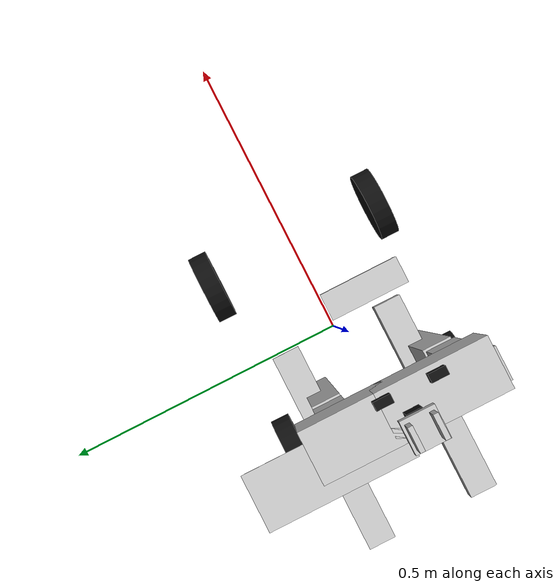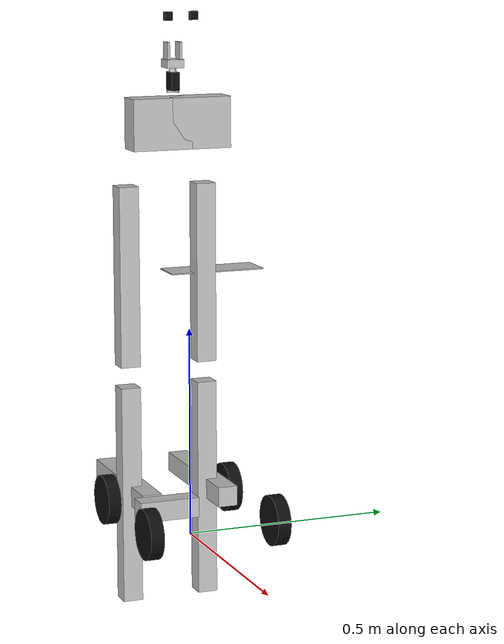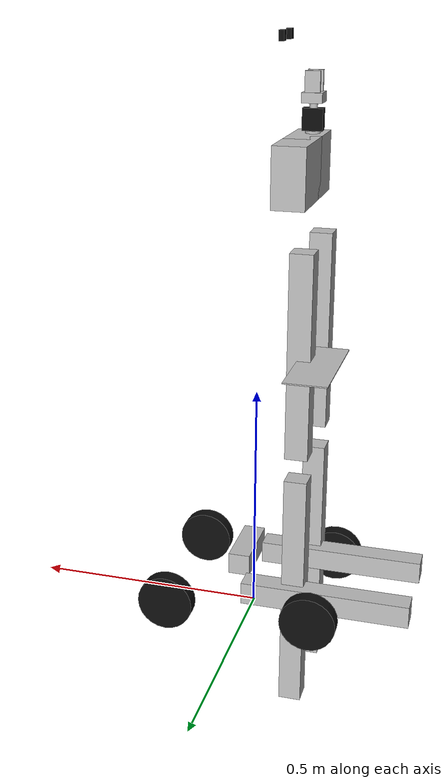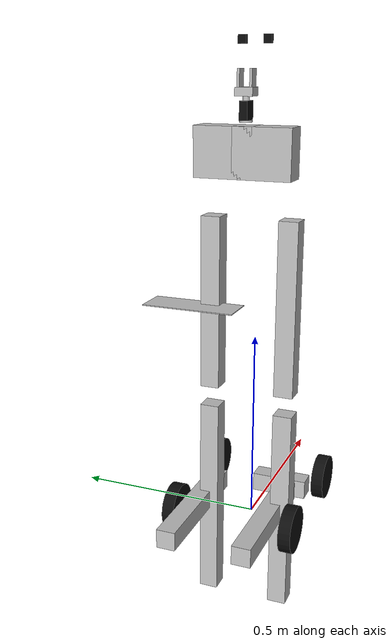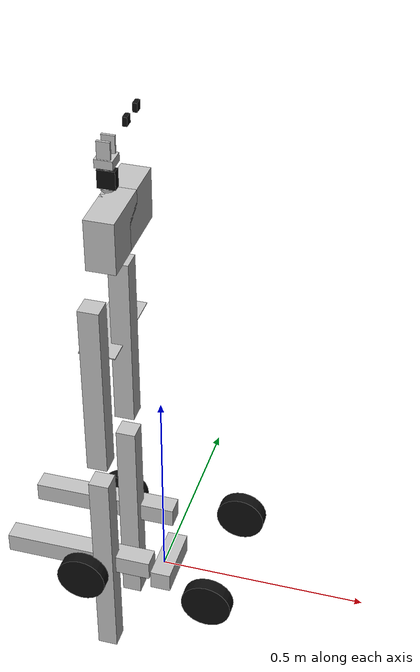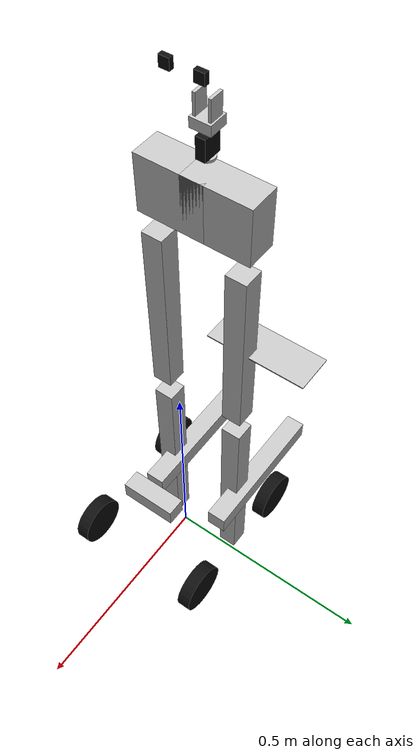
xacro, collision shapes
<?xml version="1.0"?>
<robot xmlns:xacro="http://www.ros.org/wiki/xacro" name="jessica">

  <xacro:arg name="use_ros2_control" default="true"/>
  <xacro:arg name="sim_mode"          default="false"/>

  <xacro:include filename="dimensions.xacro"/>
  <xacro:include filename="materials.xacro"/>
  <xacro:include filename="inertial_macros.xacro"/>

  <xacro:include filename="frame.xacro"/>
  <xacro:include filename="wheels.xacro"/>
  <xacro:include filename="pan_tilt.xacro"/>
  <xacro:include filename="stereo_camera.xacro"/>

  <xacro:if value="$(arg use_ros2_control)">
    <xacro:include filename="ros2_control.xacro"/>
  </xacro:if>

</robot>

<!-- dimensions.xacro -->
<robot xmlns:xacro="http://www.ros.org/wiki/xacro">

  <!-- ============ Real hardware dimensions (gobilda parts) ============ -->
  <!-- gobilda 3601-0014-0120 wheel -->
  <xacro:property name="wheel_radius" value="0.060"/>
  <xacro:property name="wheel_width"  value="0.032"/>

  <!-- gobilda 1120-series U-channel: every frame part below shares this
       48x48mm cross-section, only the length differs. -->
  <xacro:property name="channel_cross"    value="0.048"/>
  <xacro:property name="foot_length"      value="0.360"/>
  <xacro:property name="cross_bar_length" value="0.144"/>
  <xacro:property name="leg_length"       value="0.528"/>
  <xacro:property name="body_length"      value="0.432"/>

  <!-- gobilda 1116-0088-0232 flat grid plate -->
  <xacro:property name="grid_x"         value="0.088"/>   <!-- front-back depth -->
  <xacro:property name="grid_y"         value="0.232"/>   <!-- spans between the legs -->
  <xacro:property name="grid_thickness" value="0.0025"/>

  <xacro:property name="wheel_end_inset" value="0.024"/>  <!-- wheel axle inset from each end of a foot -->
  <xacro:property name="wheel_side_gap"  value="0.020"/>  <!-- gap from the foot's outer face to the wheel's near edge -->
  <xacro:property name="leg_from_back"   value="0.072"/>  <!-- leg centerline, measured from the back of the foot -->
  <xacro:property name="cross_bar_from_front" value="0.144"/>  <!-- cross-bar centerline, measured from the front of the feet -->

  <!-- Foot centerline (Y): assumes cross_bar_length is the clear span between
       the two feet's facing inner surfaces. -->
  <xacro:property name="foot_track_y" value="${cross_bar_length/2 + channel_cross/2}"/>

  <xacro:property name="wheel_sep_x" value="${foot_length/2 - wheel_end_inset}"/>
  <xacro:property name="wheel_sep_y" value="${foot_track_y + channel_cross/2 + wheel_side_gap + wheel_width/2}"/>

  <xacro:property name="foot_z"     value="${wheel_radius}"/>            <!-- foot cross-section is vertically centred on the axle -->
  <xacro:property name="foot_top_z" value="${foot_z + channel_cross/2}"/>

  <xacro:property name="leg_x"     value="${-(foot_length/2) + leg_from_back}"/>
  <xacro:property name="leg_top_z" value="${foot_top_z + leg_length}"/>

  <xacro:property name="cross_bar_x" value="${foot_length/2 - cross_bar_from_front}"/>

  <xacro:property name="grid_top_z" value="${leg_top_z + grid_thickness}"/>

  <xacro:property name="body_x"     value="${leg_x}"/>
  <xacro:property name="body_top_z" value="${grid_top_z + body_length}"/>

  <!-- Short riser between the frame's body_top and the pan servo. -->
  <xacro:property name="neck_height" value="0.005"/>

  <xacro:property name="servo_length" value="0.0407"/>
  <xacro:property name="servo_width"  value="0.0197"/>
  <xacro:property name="servo_height" value="0.0429"/>

  <!-- Coupler between the pan servo's output and the tilt servo. -->
  <xacro:property name="pan_tilt_spacer_height" value="0.01"/>

  <!-- U-bracket the head sits on, straddling the tilt servo's rotation axis. -->
  <xacro:property name="head_bracket_height"       value="0.05"/>
  <xacro:property name="head_bracket_arm_spacing"   value="0.03"/>
  <xacro:property name="head_bracket_arm_thickness" value="0.006"/>

  <xacro:property name="camera_baseline" value="0.062"/>
  <xacro:property name="camera_face_x"   value="0.051776"/>
  <xacro:property name="camera_face_z"   value="0.113845"/>

</robot>

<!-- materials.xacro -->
<robot xmlns:xacro="http://www.ros.org/wiki/xacro">

  <material name="gray">  <color rgba="0.75 0.75 0.75 1"/></material>
  <material name="blue">  <color rgba="0.2 0.2 1 1"/></material>
  <material name="black"> <color rgba="0.05 0.05 0.05 1"/></material>
  <material name="pink">  <color rgba="1.0 0.4 0.7 1"/></material>
  <material name="white"> <color rgba="0.95 0.95 0.95 1"/></material>

</robot>

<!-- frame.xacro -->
<robot xmlns:xacro="http://www.ros.org/wiki/xacro">

  <xacro:macro name="frame_mesh_part" params="mesh_name xyz rpy box_size material:=gray">
    <visual>
      <origin xyz="${xyz}" rpy="${rpy}"/>
      <geometry>
        <mesh filename="package://jessica_description/description/meshes/visual/${mesh_name}.stl" scale="0.001 0.001 0.001"/>
      </geometry>
      <material name="${material}"/>
    </visual>
    <collision>
      <origin xyz="${xyz}" rpy="${rpy}"/>
      <geometry>
        <box size="${box_size}"/>
      </geometry>
    </collision>
  </xacro:macro>

  <link name="base_link"/>

  <joint name="base_footprint_joint" type="fixed">
    <parent link="base_link"/>
    <child  link="base_footprint"/>
    <origin xyz="0 0 0" rpy="0 0 0"/>
  </joint>
  <link name="base_footprint"/>

  <joint name="chassis_joint" type="fixed">
    <parent link="base_link"/>
    <child  link="chassis"/>
    <origin xyz="0 0 0" rpy="0 0 0"/>
  </joint>
  <link name="chassis">

    <!-- Feet: native Z-axis maps straight onto global Z under this rotation,
         so it needs the +0.0215 correction (native centroid was off-centre
         in that axis by 21.5mm). -->
    <xacro:frame_mesh_part mesh_name="foot_360" box_size="${channel_cross} ${foot_length} ${channel_cross}"
      xyz="${-foot_length/2} ${foot_track_y}  ${foot_z + 0.0215}" rpy="0 0 ${-pi/2}"/>
    <xacro:frame_mesh_part mesh_name="foot_360" box_size="${channel_cross} ${foot_length} ${channel_cross}"
      xyz="${-foot_length/2} ${-foot_track_y} ${foot_z + 0.0215}" rpy="0 0 ${-pi/2}"/>

    <!-- Cross-bar: unrotated, same Z correction as the feet. -->
    <xacro:frame_mesh_part mesh_name="cross_bar_144" box_size="${channel_cross} ${cross_bar_length} ${channel_cross}"
      xyz="${cross_bar_x} ${-cross_bar_length/2} ${foot_z + 0.0215}" rpy="0 0 0"/>

    <!-- Legs: standing rotation moves the native Z-axis correction onto Y
         instead (-0.0215); the Z correction cancels out exactly. -->
    <xacro:frame_mesh_part mesh_name="leg_528" box_size="${channel_cross} ${leg_length} ${channel_cross}"
      xyz="${leg_x}  ${foot_track_y - 0.0215} ${foot_top_z}" rpy="${pi/2} 0 0"/>
    <xacro:frame_mesh_part mesh_name="leg_528" box_size="${channel_cross} ${leg_length} ${channel_cross}"
      xyz="${leg_x} ${-foot_track_y - 0.0215} ${foot_top_z}" rpy="${pi/2} 0 0"/>

    <!-- Grid, lying flat across the leg tops: fixed 40mm/112mm/1.25mm native
         offsets (see convert_meshes.py output), Z correction cancels out. -->
    <xacro:frame_mesh_part mesh_name="grid_88_232" box_size="${grid_x} ${grid_thickness} ${grid_y}"
      xyz="${body_x - 0.040} 0.112 ${leg_top_z}" rpy="${pi/2} 0 0"/>

    <!-- Body channels: same rotation/correction pattern as the legs, Z correction cancels out. -->
    <xacro:frame_mesh_part mesh_name="body_432" box_size="${channel_cross} ${body_length} ${channel_cross}"
      xyz="${body_x}  ${foot_track_y - 0.0215} ${grid_top_z}" rpy="${pi/2} 0 0"/>
    <xacro:frame_mesh_part mesh_name="body_432" box_size="${channel_cross} ${body_length} ${channel_cross}"
      xyz="${body_x} ${-foot_track_y - 0.0215} ${grid_top_z}" rpy="${pi/2} 0 0"/>

    <xacro:frame_mesh_part mesh_name="robot_front" material="white" box_size="0.121 0.144 0.067"
      xyz="${body_x + channel_cross/2} ${-(foot_track_y + channel_cross/2) + 0.077000} ${body_top_z - 0.068951}" rpy="${pi/2} ${pi/2} ${-pi/2}"/>

    <xacro:frame_mesh_part mesh_name="robot_front" material="white" box_size="0.121 0.144 0.067"
      xyz="${body_x + channel_cross/2} ${foot_track_y + channel_cross/2 - 0.067000} ${body_top_z - 0.068951}" rpy="${pi/2} ${pi/2} ${-pi/2}"/>

  </link>

  <joint name="body_top_joint" type="fixed">
    <parent link="chassis"/>
    <child  link="body_top"/>
    <origin xyz="${body_x} 0 ${body_top_z}" rpy="0 0 0"/>
  </joint>
  <link name="body_top"/>

</robot>

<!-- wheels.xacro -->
<robot xmlns:xacro="http://www.ros.org/wiki/xacro">

  <xacro:macro name="wheel" params="name x y reflect">
    <link name="${name}">
      <visual>
        <origin xyz="0 0.016 0" rpy="${-pi/2} 0 0"/>
        <geometry><mesh filename="package://jessica_description/description/meshes/visual/wheel_120.stl" scale="0.001 0.001 0.001"/></geometry>
        <material name="black"/>
      </visual>
      <collision>
        <origin xyz="0 0 0" rpy="${pi/2} 0 0"/>
        <geometry><cylinder length="${wheel_width}" radius="${wheel_radius}"/></geometry>
      </collision>
    </link>
    <joint name="${name}_joint" type="continuous">
      <parent link="base_link"/>
      <child  link="${name}"/>
      <origin xyz="${x} ${y} ${wheel_radius}" rpy="0 0 0"/>
      <axis xyz="0 1 0"/>
    </joint>
  </xacro:macro>

  <xacro:wheel name="left_front_wheel"  x="${ wheel_sep_x}" y="${ wheel_sep_y}" reflect="1"/>
  <xacro:wheel name="left_rear_wheel"   x="${-wheel_sep_x}" y="${ wheel_sep_y}" reflect="1"/>
  <xacro:wheel name="right_front_wheel" x="${ wheel_sep_x}" y="${-wheel_sep_y}" reflect="-1"/>
  <xacro:wheel name="right_rear_wheel"  x="${-wheel_sep_x}" y="${-wheel_sep_y}" reflect="-1"/>

</robot>

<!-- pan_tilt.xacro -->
<robot xmlns:xacro="http://www.ros.org/wiki/xacro">

  <xacro:macro name="mg996_servo" params="xyz rpy">
    <visual>
      <origin xyz="${xyz}" rpy="${rpy}"/>
      <geometry><box size="${servo_length} ${servo_width} ${servo_height}"/></geometry>
      <material name="black"/>
    </visual>
    <collision>
      <origin xyz="${xyz}" rpy="${rpy}"/>
      <geometry><box size="${servo_length} ${servo_width} ${servo_height}"/></geometry>
    </collision>
  </xacro:macro>

  <joint name="neck_joint" type="fixed">
    <parent link="body_top"/>
    <child  link="neck"/>
    <origin xyz="0.005 0 0" rpy="0 0 0"/>
  </joint>
  <link name="neck">
    <visual>
      <origin xyz="0 0 ${neck_height/2}" rpy="0 0 0"/>
      <geometry><cylinder radius="0.015" length="${neck_height}"/></geometry>
      <material name="gray"/>
    </visual>
    <collision>
      <origin xyz="0 0 ${neck_height/2}" rpy="0 0 0"/>
      <geometry><cylinder radius="0.015" length="${neck_height}"/></geometry>
    </collision>
  </link>

  <joint name="pan_servo_joint" type="fixed">
    <parent link="neck"/>
    <child  link="pan_servo"/>
    <origin xyz="0 0 ${neck_height}" rpy="0 0 0"/>
  </joint>
  <link name="pan_servo">
    <!-- shaft (servo_height axis) points straight up -->
    <xacro:mg996_servo xyz="0 0 ${servo_height/2}" rpy="0 0 0"/>
  </link>

  <!-- pan: yaw about Z -->
  <joint name="pan_joint" type="revolute">
    <parent link="pan_servo"/>
    <child  link="tilt_mount"/>
    <origin xyz="0 0 ${servo_height}" rpy="0 0 0"/>
    <axis xyz="0 0 1"/>
    <limit lower="-1.57" upper="1.57" effort="5.0" velocity="3.0"/>
  </joint>
  <link name="tilt_mount">
    <!-- coupler between the pan servo's output and the tilt servo -->
    <visual>
      <origin xyz="0 0 ${pan_tilt_spacer_height/2}" rpy="0 0 0"/>
      <geometry><cylinder radius="0.008" length="${pan_tilt_spacer_height}"/></geometry>
      <material name="gray"/>
    </visual>
    <collision>
      <origin xyz="0 0 ${pan_tilt_spacer_height/2}" rpy="0 0 0"/>
      <geometry><cylinder radius="0.008" length="${pan_tilt_spacer_height}"/></geometry>
    </collision>
    <xacro:mg996_servo xyz="0 0 ${pan_tilt_spacer_height + servo_width/2}" rpy="${pi/2} 0 0"/>
  </link>

  <!-- tilt: pitch about Y -->
  <joint name="tilt_joint" type="revolute">
    <parent link="tilt_mount"/>
    <child  link="head"/>
    <origin xyz="0 0 ${pan_tilt_spacer_height + servo_width/2}" rpy="0 0 0"/>
    <axis xyz="0 1 0"/>
    <limit lower="-1.5" upper="0.87" effort="5.0" velocity="3.0"/>
  </joint>
  <link name="head">
    <!-- U-bracket the head sits on, straddling the tilt servo's rotation
         axis (Y) with an arm on each side, rising to head_bracket_height. -->
    <visual>
      <origin xyz="0 ${head_bracket_arm_spacing/2} ${head_bracket_height/2}" rpy="0 0 0"/>
      <geometry><box size="0.03 ${head_bracket_arm_thickness} ${head_bracket_height}"/></geometry>
      <material name="gray"/>
    </visual>
    <collision>
      <origin xyz="0 ${head_bracket_arm_spacing/2} ${head_bracket_height/2}" rpy="0 0 0"/>
      <geometry><box size="0.03 ${head_bracket_arm_thickness} ${head_bracket_height}"/></geometry>
    </collision>
    <visual>
      <origin xyz="0 ${-head_bracket_arm_spacing/2} ${head_bracket_height/2}" rpy="0 0 0"/>
      <geometry><box size="0.03 ${head_bracket_arm_thickness} ${head_bracket_height}"/></geometry>
      <material name="gray"/>
    </visual>
    <collision>
      <origin xyz="0 ${-head_bracket_arm_spacing/2} ${head_bracket_height/2}" rpy="0 0 0"/>
      <geometry><box size="0.03 ${head_bracket_arm_thickness} ${head_bracket_height}"/></geometry>
    </collision>

    <visual>
      <origin xyz="0.04 0 ${head_bracket_height + 0.043758}" rpy="0 0 0"/>
      <geometry><mesh filename="package://jessica_description/description/meshes/visual/head_bottom.stl" scale="0.001 0.001 0.001"/></geometry>
      <material name="white"/>
    </visual>
    <visual>
      <origin xyz="0.04 0 ${head_bracket_height + 0.043758}" rpy="0 0 0"/>
      <geometry><mesh filename="package://jessica_description/description/meshes/visual/head_top.stl" scale="0.001 0.001 0.001"/></geometry>
      <material name="white"/>
    </visual>
  </link>

</robot>

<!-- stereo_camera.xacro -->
<robot xmlns:xacro="http://www.ros.org/wiki/xacro">

  <xacro:macro name="camera" params="name xyz">
    <joint name="${name}_joint" type="fixed">
      <parent link="head"/>
      <child  link="${name}_link"/>
      <origin xyz="${xyz}" rpy="0 0 0"/>
    </joint>
    <link name="${name}_link">
      <visual>
        <geometry><box size="0.01 0.02 0.02"/></geometry>
        <material name="black"/>
      </visual>
      <collision>
        <geometry><box size="0.01 0.02 0.02"/></geometry>
      </collision>
    </link>

    <joint name="${name}_optical_joint" type="fixed">
      <parent link="${name}_link"/>
      <child  link="${name}_optical_link"/>
      <origin xyz="0 0 0" rpy="${-pi/2} 0 ${-pi/2}"/>
    </joint>
    <link name="${name}_optical_link"/>
  </xacro:macro>

  <xacro:camera name="left_camera"  xyz="${camera_face_x + 0.005}  ${camera_baseline/2} ${camera_face_z}"/>
  <xacro:camera name="right_camera" xyz="${camera_face_x + 0.005} ${-camera_baseline/2} ${camera_face_z}"/>

</robot>
